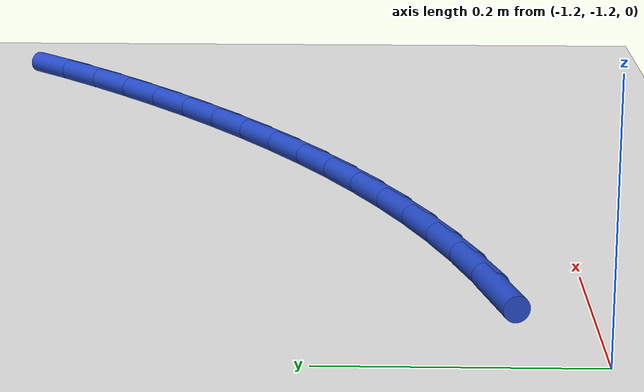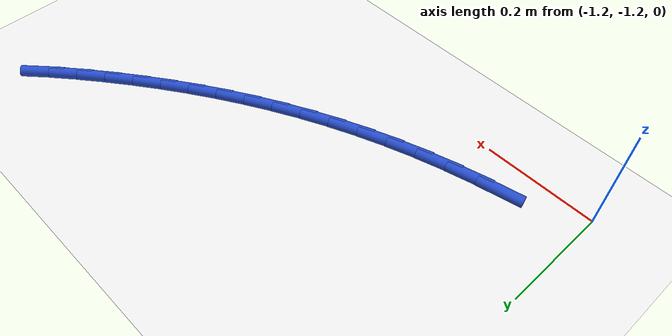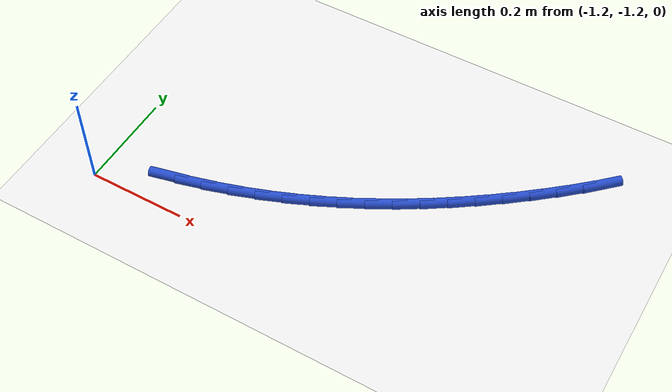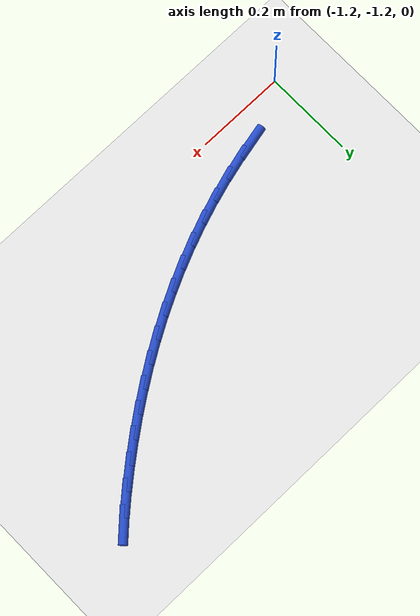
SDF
<sdf version="1.6">
 <world name="default">
  <model name="ground_plane">
   <static>1</static>
   <link name="link">
    <collision name="collision">
     <geometry><plane><normal>0 0 1</normal><size>100 100</size></plane></geometry>
     <surface><friction><ode><mu>100</mu><mu2>50</mu2></ode></friction></surface>
    </collision>
    <visual name="visual">
     <cast_shadows>0</cast_shadows>
     <geometry><plane><normal>0 0 1</normal><size>100 100</size></plane></geometry>
     <material>
      <script><uri>file://media/materials/scripts/gazebo.material</uri><name>Gazebo/WhiteGlow</name></script>
     </material>
    </visual>
   </link>
  </model>
  <model name="line">
   <link name="link_98">
    <pose>-1.06851817423556 -1.135728014122813 0.01 0 1.57 0.22240455611492999</pose>
    <collision name="collision">
     <geometry><cylinder><radius>0.01</radius><length>0.08</length></cylinder></geometry>
    </collision>
    <visual name="visual">
     <material>
      <script><name>Gazebo/Blue</name><uri>file://media/materials/scripts/gazebo.material</uri></script>
     </material>
     <geometry><cylinder><radius>0.01</radius><length>0.08</length></cylinder></geometry>
    </visual>
   </link>
   <link name="link_99">
    <pose>-1.0154729672317622 -1.1237320749012905 0.01 0 1.57 0.26321233855972936</pose>
    <collision name="collision">
     <geometry><cylinder><radius>0.01</radius><length>0.08</length></cylinder></geometry>
    </collision>
    <visual name="visual">
     <material>
      <script><name>Gazebo/Blue</name><uri>file://media/materials/scripts/gazebo.material</uri></script>
     </material>
     <geometry><cylinder><radius>0.01</radius><length>0.08</length></cylinder></geometry>
    </visual>
   </link>
   <link name="link_100">
    <pose>-0.9635548595954498 -1.1097420054790668 0.01 0 1.57 0.30352174930737164</pose>
    <collision name="collision">
     <geometry><cylinder><radius>0.01</radius><length>0.08</length></cylinder></geometry>
    </collision>
    <visual name="visual">
     <material>
      <script><name>Gazebo/Blue</name><uri>file://media/materials/scripts/gazebo.material</uri></script>
     </material>
     <geometry><cylinder><radius>0.01</radius><length>0.08</length></cylinder></geometry>
    </visual>
   </link>
   <link name="link_101">
    <pose>-0.9127309317532765 -1.0938239911455896 0.01 0 1.57 0.3431556873655347</pose>
    <collision name="collision">
     <geometry><cylinder><radius>0.01</radius><length>0.08</length></cylinder></geometry>
    </collision>
    <visual name="visual">
     <material>
      <script><name>Gazebo/Blue</name><uri>file://media/materials/scripts/gazebo.material</uri></script>
     </material>
     <geometry><cylinder><radius>0.01</radius><length>0.08</length></cylinder></geometry>
    </visual>
   </link>
   <link name="link_102">
    <pose>-0.862968264131897 -1.0760442171903075 0.01 0 1.57 0.38194928724266874</pose>
    <collision name="collision">
     <geometry><cylinder><radius>0.01</radius><length>0.08</length></cylinder></geometry>
    </collision>
    <visual name="visual">
     <material>
      <script><name>Gazebo/Blue</name><uri>file://media/materials/scripts/gazebo.material</uri></script>
     </material>
     <geometry><cylinder><radius>0.01</radius><length>0.08</length></cylinder></geometry>
    </visual>
   </link>
   <link name="link_103">
    <pose>-0.8142339371579673 -1.0564688689026698 0.01 0 1.57 0.4197528962750119</pose>
    <collision name="collision">
     <geometry><cylinder><radius>0.01</radius><length>0.08</length></cylinder></geometry>
    </collision>
    <visual name="visual">
     <material>
      <script><name>Gazebo/Blue</name><uri>file://media/materials/scripts/gazebo.material</uri></script>
     </material>
     <geometry><cylinder><radius>0.01</radius><length>0.08</length></cylinder></geometry>
    </visual>
   </link>
   <link name="link_104">
    <pose>-0.7664950312581413 -1.0351641315721245 0.01 0 1.57 0.4564342358150875</pose>
    <collision name="collision">
     <geometry><cylinder><radius>0.01</radius><length>0.08</length></cylinder></geometry>
    </collision>
    <visual name="visual">
     <material>
      <script><name>Gazebo/Blue</name><uri>file://media/materials/scripts/gazebo.material</uri></script>
     </material>
     <geometry><cylinder><radius>0.01</radius><length>0.08</length></cylinder></geometry>
    </visual>
   </link>
   <link name="link_105">
    <pose>-0.7197186268590742 -1.0121961904881203 0.01 0 1.57 0.4918797069762116</pose>
    <collision name="collision">
     <geometry><cylinder><radius>0.01</radius><length>0.08</length></cylinder></geometry>
    </collision>
    <visual name="visual">
     <material>
      <script><name>Gazebo/Blue</name><uri>file://media/materials/scripts/gazebo.material</uri></script>
     </material>
     <geometry><cylinder><radius>0.01</radius><length>0.08</length></cylinder></geometry>
    </visual>
   </link>
   <link name="link_106">
    <pose>-0.6738718043874207 -0.9876312309401062 0.01 0 1.57 0.5259948704768516</pose>
    <collision name="collision">
     <geometry><cylinder><radius>0.01</radius><length>0.08</length></cylinder></geometry>
    </collision>
    <visual name="visual">
     <material>
      <script><name>Gazebo/Blue</name><uri>file://media/materials/scripts/gazebo.material</uri></script>
     </material>
     <geometry><cylinder><radius>0.01</radius><length>0.08</length></cylinder></geometry>
    </visual>
   </link>
   <link name="link_107">
    <pose>-0.6289216442698347 -0.961535438217529 0.01 0 1.57 0.5587041855867795</pose>
    <collision name="collision">
     <geometry><cylinder><radius>0.01</radius><length>0.08</length></cylinder></geometry>
    </collision>
    <visual name="visual">
     <material>
      <script><name>Gazebo/Blue</name><uri>file://media/materials/scripts/gazebo.material</uri></script>
     </material>
     <geometry><cylinder><radius>0.01</radius><length>0.08</length></cylinder></geometry>
    </visual>
   </link>
   <link name="link_108">
    <pose>-0.5848352269329726 -0.9339749976098394 0.01 0 1.57 0.5899501309994305</pose>
    <collision name="collision">
     <geometry><cylinder><radius>0.01</radius><length>0.08</length></cylinder></geometry>
    </collision>
    <visual name="visual">
     <material>
      <script><name>Gazebo/Blue</name><uri>file://media/materials/scripts/gazebo.material</uri></script>
     </material>
     <geometry><cylinder><radius>0.01</radius><length>0.08</length></cylinder></geometry>
    </visual>
   </link>
   <link name="link_109">
    <pose>-0.5415796328034886 -0.9050160944064852 0.01 0 1.57 0.6196918498406759</pose>
    <collision name="collision">
     <geometry><cylinder><radius>0.01</radius><length>0.08</length></cylinder></geometry>
    </collision>
    <visual name="visual">
     <material>
      <script><name>Gazebo/Blue</name><uri>file://media/materials/scripts/gazebo.material</uri></script>
     </material>
     <geometry><cylinder><radius>0.01</radius><length>0.08</length></cylinder></geometry>
    </visual>
   </link>
   <link name="link_110">
    <pose>-0.4991219423080366 -0.8747249138969139 0.01 0 1.57 0.647903463936626</pose>
    <collision name="collision">
     <geometry><cylinder><radius>0.01</radius><length>0.08</length></cylinder></geometry>
    </collision>
    <visual name="visual">
     <material>
      <script><name>Gazebo/Blue</name><uri>file://media/materials/scripts/gazebo.material</uri></script>
     </material>
     <geometry><cylinder><radius>0.01</radius><length>0.08</length></cylinder></geometry>
    </visual>
   </link>
   <link name="link_111">
    <pose>-0.4574292358732732 -0.843167641370576 0.01 0 1.57 0.674615746219657</pose>
    <collision name="collision">
     <geometry><cylinder><radius>0.01</radius><length>0.08</length></cylinder></geometry>
    </collision>
    <visual name="visual">
     <material>
      <script><name>Gazebo/Blue</name><uri>file://media/materials/scripts/gazebo.material</uri></script>
     </material>
     <geometry><cylinder><radius>0.01</radius><length>0.08</length></cylinder></geometry>
    </visual>
   </link>
   <link name="link_112">
    <pose>-0.41647088090326967 -0.810409366181104 0.01 0 1.57 0.7017619846369267</pose>
    <collision name="collision">
     <geometry><cylinder><radius>0.01</radius><length>0.08</length></cylinder></geometry>
    </collision>
    <visual name="visual">
     <material>
      <script><name>Gazebo/Blue</name><uri>file://media/materials/scripts/gazebo.material</uri></script>
     </material>
     <geometry><cylinder><radius>0.01</radius><length>0.08</length></cylinder></geometry>
    </visual>
   </link>
   <link name="link_113">
    <pose>-0.3763168494196812 -0.7764669672351417 0.01 0 1.57 0.7320815031222608</pose>
    <collision name="collision">
     <geometry><cylinder><radius>0.01</radius><length>0.08</length></cylinder></geometry>
    </collision>
    <visual name="visual">
     <material>
      <script><name>Gazebo/Blue</name><uri>file://media/materials/scripts/gazebo.material</uri></script>
     </material>
     <geometry><cylinder><radius>0.01</radius><length>0.08</length></cylinder></geometry>
    </visual>
   </link>
   <link name="link_114">
    <pose>-0.3371750041141572 -0.7412912452513147 0.01 0 1.57 0.7659210078122524</pose>
    <collision name="collision">
     <geometry><cylinder><radius>0.01</radius><length>0.08</length></cylinder></geometry>
    </collision>
    <visual name="visual">
     <material>
      <script><name>Gazebo/Blue</name><uri>file://media/materials/scripts/gazebo.material</uri></script>
     </material>
     <geometry><cylinder><radius>0.01</radius><length>0.08</length></cylinder></geometry>
    </visual>
   </link>
  </model>
 </world>
</sdf>
